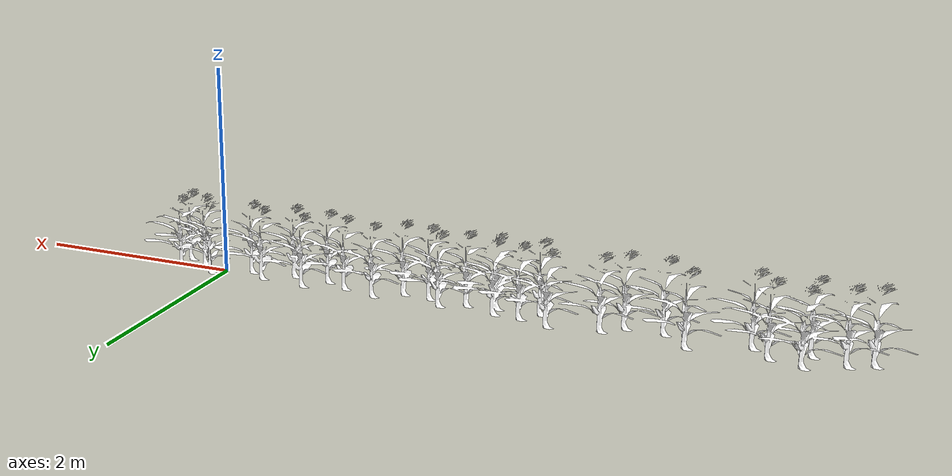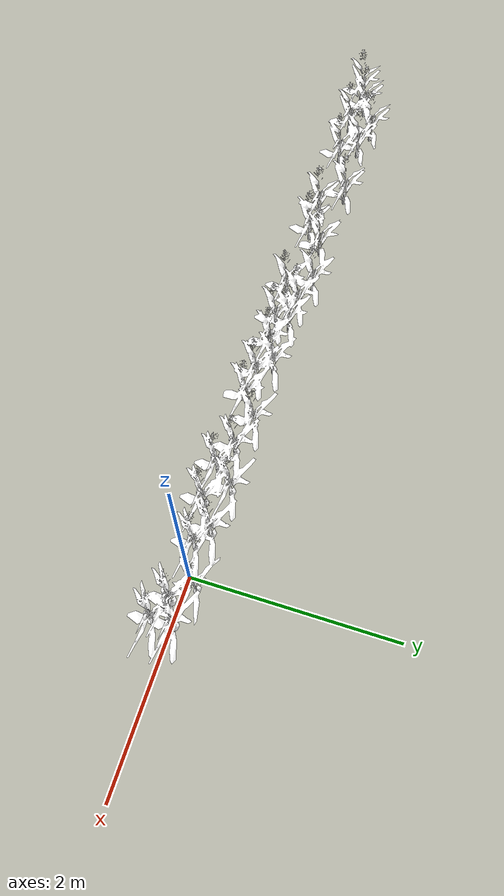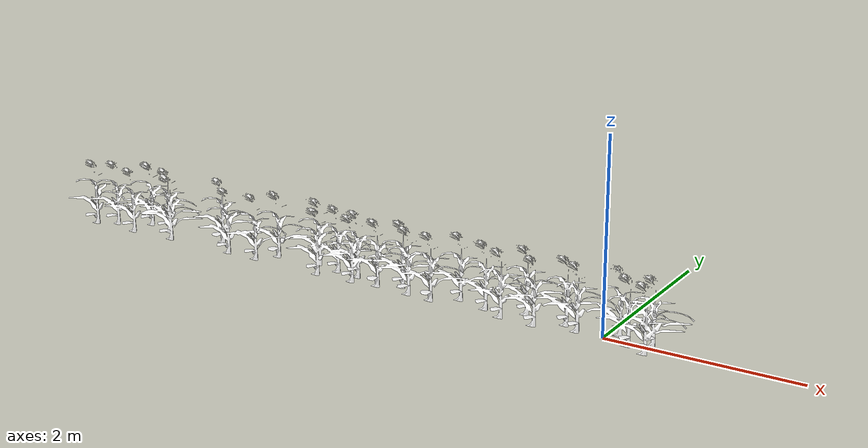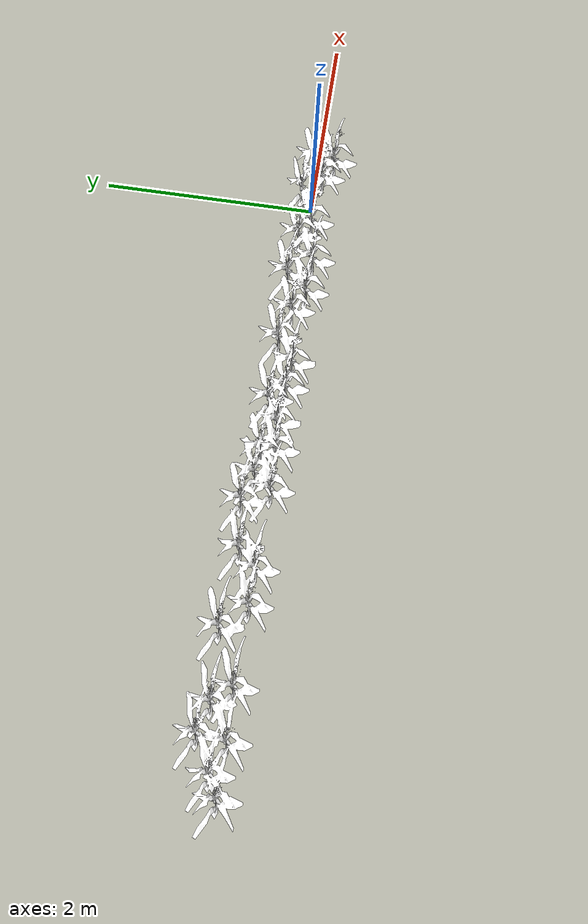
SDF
<?xml version="1.0"?>
<sdf version='1.4'>
  <model name="corn">
      <static>0</static>
      <link name="link">
        <inertial>
          <pose>0 0 0 0 0 0</pose>
          <mass>1.0</mass>
          <inertia>
            <ixx>0.0385483333333</ixx>
            <ixy>000000</ixy>
            <ixz>0.000000</ixz>
            <iyy>0.107087533333</iyy>
            <iyz>0.000000</iyz>
            <izz>0.1243542</izz>
          </inertia>
        </inertial>
        <visual name="visual">
            <pose>0 0 0 0 0 0</pose>
            <geometry>
                <mesh>
                    <uri>model://corn/meshes/corn_group.dae</uri>
                    <scale>1.1 0.6 0.4</scale>
                </mesh>
            </geometry>
            <material>
            <ambient>0 1 0 1</ambient>
            <diffuse>1 1 1 1</diffuse>
            <specular>0 0.5 0 0</specular>
            <emissive>0 0 0 1</emissive>
            </material>
        </visual>
      </link>
    </model>
</sdf>
